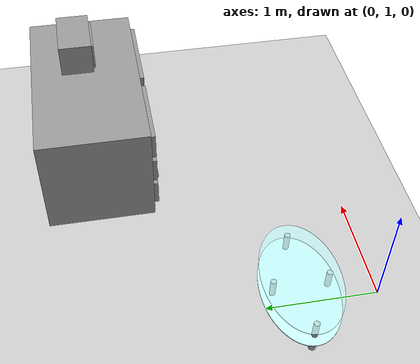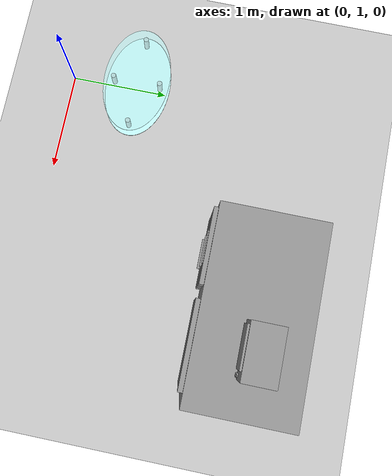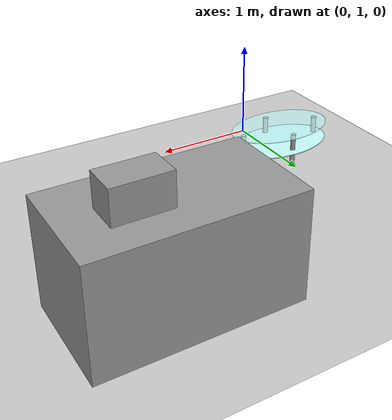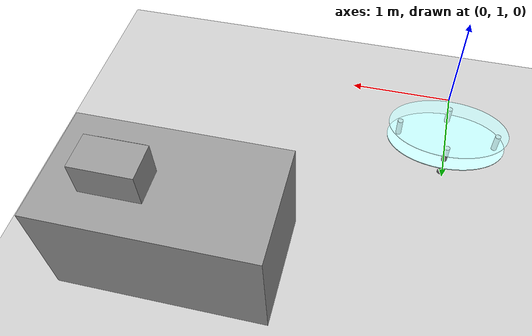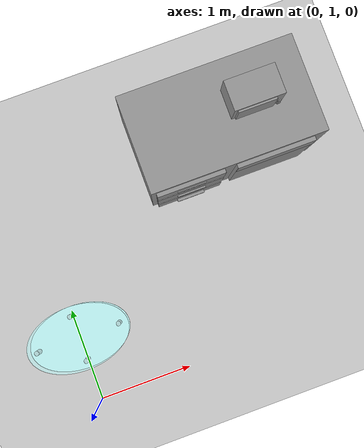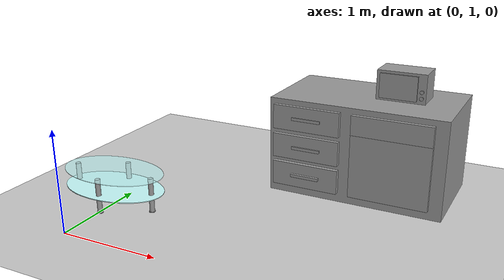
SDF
<sdf version="1.7">
 <world name="default">
  <model name="ground_plane">
   <static>1</static>
   <link name="link">
    <collision name="collision">
     <geometry><plane><normal>0 0 1</normal><size>100 100</size></plane></geometry>
     <surface>
      <contact><collide_bitmask>65535</collide_bitmask></contact>
      <friction><ode><mu>100</mu><mu2>50</mu2></ode></friction>
     </surface>
    </collision>
    <visual name="visual">
     <cast_shadows>0</cast_shadows>
     <geometry><plane><normal>0 0 1</normal><size>100 100</size></plane></geometry>
     <material>
      <script><uri>file://media/materials/scripts/gazebo.material</uri><name>Gazebo/Grey</name></script>
     </material>
    </visual>
   </link>
  </model>
  <model name="my_kitchen">
   <link name="link_clone">
    <inertial>
     <mass>1</mass>
     <inertia>
      <ixx>0.166667</ixx>
      <ixy>0</ixy>
      <ixz>0</ixz>
      <iyy>0.166667</iyy>
      <iyz>0</iyz>
      <izz>0.166667</izz>
     </inertia>
    </inertial>
    <pose>-1.0136 -2.15012 0 0 -0 0</pose>
    <visual name="visual">
     <geometry><box><size>1 1.8 1</size></box></geometry>
     <material>
      <script><name>Gazebo/Grey</name><uri>file://media/materials/scripts/gazebo.material</uri></script>
      <shader type="pixel"><normal_map>__default__</normal_map></shader>
      <ambient>0.8 0.8 0.8 1</ambient>
      <diffuse>0.65 0.65 0.65 1</diffuse>
      <specular>0.01 0.01 0.01 1</specular>
      <emissive>0 0 0 1</emissive>
     </material>
     <pose>0 0 0.5 0 -0 0</pose>
    </visual>
    <collision name="collision">
     <pose>0 0 0.5 0 -0 0</pose>
     <geometry><box><size>1 1.8 1</size></box></geometry>
     <surface>
      <friction>
       <ode><mu>1</mu><mu2>1</mu2><fdir1>0 0 0</fdir1><slip1>0</slip1><slip2>0</slip2></ode>
       <torsional>
        <coefficient>1</coefficient>
        <patch_radius>0</patch_radius>
        <surface_radius>0</surface_radius>
        <use_patch_radius>1</use_patch_radius>
        <ode><slip>0</slip></ode>
       </torsional>
      </friction>
      <bounce><restitution_coefficient>0</restitution_coefficient><threshold>1e+06</threshold></bounce>
      <contact>
       <collide_without_contact>0</collide_without_contact>
       <collide_without_contact_bitmask>1</collide_without_contact_bitmask>
       <collide_bitmask>1</collide_bitmask>
       <ode>
        <soft_cfm>0</soft_cfm>
        <soft_erp>0.2</soft_erp>
        <kp>1e+13</kp>
        <kd>1</kd>
        <max_vel>0.01</max_vel>
        <min_depth>0</min_depth>
       </ode>
       <bullet>
        <split_impulse>1</split_impulse>
        <split_impulse_penetration_threshold>-0.01</split_impulse_penetration_threshold>
        <soft_cfm>0</soft_cfm>
        <soft_erp>0.2</soft_erp>
        <kp>1e+13</kp>
        <kd>1</kd>
       </bullet>
      </contact>
     </surface>
    </collision>
   </link>
   <link name="link_clone_clone_clone_0_clone">
    <inertial>
     <mass>1</mass>
     <inertia>
      <ixx>0.166667</ixx>
      <ixy>0</ixy>
      <ixz>0</ixz>
      <iyy>0.166667</iyy>
      <iyz>0</iyz>
      <izz>0.166667</izz>
     </inertia>
    </inertial>
    <pose>-0.495016 -2.64917 0.017117 0 -0 0</pose>
    <visual name="visual">
     <geometry><box><size>0.05 0.7 0.25</size></box></geometry>
     <material>
      <script><name>Gazebo/Grey</name><uri>file://media/materials/scripts/gazebo.material</uri></script>
      <shader type="pixel"><normal_map>__default__</normal_map></shader>
      <ambient>0.4 0.4 0.4 1</ambient>
      <diffuse>0.4 0.4 0.4 1</diffuse>
      <specular>0.01 0.01 0.01 1</specular>
      <emissive>0 0 0 1</emissive>
     </material>
     <pose>0 0 0.5 0 -0 0</pose>
    </visual>
    <collision name="collision">
     <pose>0 0 0.5 0 -0 0</pose>
     <geometry><box><size>0.05 0.7 0.25</size></box></geometry>
     <surface>
      <friction>
       <ode><mu>1</mu><mu2>1</mu2><fdir1>0 0 0</fdir1><slip1>0</slip1><slip2>0</slip2></ode>
       <torsional>
        <coefficient>1</coefficient>
        <patch_radius>0</patch_radius>
        <surface_radius>0</surface_radius>
        <use_patch_radius>1</use_patch_radius>
        <ode><slip>0</slip></ode>
       </torsional>
      </friction>
      <bounce><restitution_coefficient>0</restitution_coefficient><threshold>1e+06</threshold></bounce>
      <contact>
       <collide_without_contact>0</collide_without_contact>
       <collide_without_contact_bitmask>1</collide_without_contact_bitmask>
       <collide_bitmask>1</collide_bitmask>
       <ode>
        <soft_cfm>0</soft_cfm>
        <soft_erp>0.2</soft_erp>
        <kp>1e+13</kp>
        <kd>1</kd>
        <max_vel>0.01</max_vel>
        <min_depth>0</min_depth>
       </ode>
       <bullet>
        <split_impulse>1</split_impulse>
        <split_impulse_penetration_threshold>-0.01</split_impulse_penetration_threshold>
        <soft_cfm>0</soft_cfm>
        <soft_erp>0.2</soft_erp>
        <kp>1e+13</kp>
        <kd>1</kd>
       </bullet>
      </contact>
     </surface>
    </collision>
   </link>
   <link name="link_clone_clone_clone_0_clone_clone">
    <inertial>
     <mass>1</mass>
     <inertia>
      <ixx>0.166667</ixx>
      <ixy>0</ixy>
      <ixz>0</ixz>
      <iyy>0.166667</iyy>
      <iyz>0</iyz>
      <izz>0.166667</izz>
     </inertia>
    </inertial>
    <pose>-0.496692 -2.64979 0.318441 0 -0 0</pose>
    <visual name="visual">
     <geometry><box><size>0.05 0.7 0.25</size></box></geometry>
     <material>
      <script><name>Gazebo/Grey</name><uri>file://media/materials/scripts/gazebo.material</uri></script>
      <shader type="pixel"><normal_map>__default__</normal_map></shader>
      <ambient>0.4 0.4 0.4 1</ambient>
      <diffuse>0.4 0.4 0.4 1</diffuse>
      <specular>0.01 0.01 0.01 1</specular>
      <emissive>0 0 0 1</emissive>
     </material>
     <pose>0 0 0.5 0 -0 0</pose>
    </visual>
    <collision name="collision">
     <pose>0 0 0.5 0 -0 0</pose>
     <geometry><box><size>0.05 0.7 0.25</size></box></geometry>
     <surface>
      <friction>
       <ode><mu>1</mu><mu2>1</mu2><fdir1>0 0 0</fdir1><slip1>0</slip1><slip2>0</slip2></ode>
       <torsional>
        <coefficient>1</coefficient>
        <patch_radius>0</patch_radius>
        <surface_radius>0</surface_radius>
        <use_patch_radius>1</use_patch_radius>
        <ode><slip>0</slip></ode>
       </torsional>
      </friction>
      <bounce><restitution_coefficient>0</restitution_coefficient><threshold>1e+06</threshold></bounce>
      <contact>
       <collide_without_contact>0</collide_without_contact>
       <collide_without_contact_bitmask>1</collide_without_contact_bitmask>
       <collide_bitmask>1</collide_bitmask>
       <ode>
        <soft_cfm>0</soft_cfm>
        <soft_erp>0.2</soft_erp>
        <kp>1e+13</kp>
        <kd>1</kd>
        <max_vel>0.01</max_vel>
        <min_depth>0</min_depth>
       </ode>
       <bullet>
        <split_impulse>1</split_impulse>
        <split_impulse_penetration_threshold>-0.01</split_impulse_penetration_threshold>
        <soft_cfm>0</soft_cfm>
        <soft_erp>0.2</soft_erp>
        <kp>1e+13</kp>
        <kd>1</kd>
       </bullet>
      </contact>
     </surface>
    </collision>
   </link>
   <link name="link_clone_clone_clone_0_clone_clone_0">
    <inertial>
     <mass>1</mass>
     <inertia>
      <ixx>0.166667</ixx>
      <ixy>0</ixy>
      <ixz>0</ixz>
      <iyy>0.166667</iyy>
      <iyz>0</iyz>
      <izz>0.166667</izz>
     </inertia>
    </inertial>
    <pose>-0.49222 -2.64791 -0.281579 0 -0 0</pose>
    <visual name="visual">
     <geometry><box><size>0.05 0.7 0.25</size></box></geometry>
     <material>
      <script><name>Gazebo/Grey</name><uri>file://media/materials/scripts/gazebo.material</uri></script>
      <shader type="pixel"><normal_map>__default__</normal_map></shader>
      <ambient>0.4 0.4 0.4 1</ambient>
      <diffuse>0.4 0.4 0.4 1</diffuse>
      <specular>0.01 0.01 0.01 1</specular>
      <emissive>0 0 0 1</emissive>
     </material>
     <pose>0 0 0.5 0 -0 0</pose>
    </visual>
    <collision name="collision">
     <pose>0 0 0.5 0 -0 0</pose>
     <geometry><box><size>0.05 0.7 0.25</size></box></geometry>
     <surface>
      <friction>
       <ode><mu>1</mu><mu2>1</mu2><fdir1>0 0 0</fdir1><slip1>0</slip1><slip2>0</slip2></ode>
       <torsional>
        <coefficient>1</coefficient>
        <patch_radius>0</patch_radius>
        <surface_radius>0</surface_radius>
        <use_patch_radius>1</use_patch_radius>
        <ode><slip>0</slip></ode>
       </torsional>
      </friction>
      <bounce><restitution_coefficient>0</restitution_coefficient><threshold>1e+06</threshold></bounce>
      <contact>
       <collide_without_contact>0</collide_without_contact>
       <collide_without_contact_bitmask>1</collide_without_contact_bitmask>
       <collide_bitmask>1</collide_bitmask>
       <ode>
        <soft_cfm>0</soft_cfm>
        <soft_erp>0.2</soft_erp>
        <kp>1e+13</kp>
        <kd>1</kd>
        <max_vel>0.01</max_vel>
        <min_depth>0</min_depth>
       </ode>
       <bullet>
        <split_impulse>1</split_impulse>
        <split_impulse_penetration_threshold>-0.01</split_impulse_penetration_threshold>
        <soft_cfm>0</soft_cfm>
        <soft_erp>0.2</soft_erp>
        <kp>1e+13</kp>
        <kd>1</kd>
       </bullet>
      </contact>
     </surface>
    </collision>
   </link>
   <link name="link_clone_clone_clone_0_clone_clone_clone_0">
    <inertial>
     <mass>1</mass>
     <inertia>
      <ixx>0.166667</ixx>
      <ixy>0</ixy>
      <ixz>0</ixz>
      <iyy>0.166667</iyy>
      <iyz>0</iyz>
      <izz>0.166667</izz>
     </inertia>
    </inertial>
    <pose>-0.499193 -1.7796 0.016041 0 -0 0</pose>
    <gravity>0</gravity>
    <visual name="visual">
     <geometry><box><size>0.05 0.8 0.85</size></box></geometry>
     <material>
      <script><name>Gazebo/Grey</name><uri>file://media/materials/scripts/gazebo.material</uri></script>
      <shader type="pixel"><normal_map>__default__</normal_map></shader>
      <ambient>0.9 0.9 0.9 1</ambient>
      <diffuse>0.9 0.9 0.9 1</diffuse>
      <specular>0.01 0.01 0.01 1</specular>
      <emissive>0 0 0 1</emissive>
     </material>
     <pose>0 0 0.5 0 -0 0</pose>
    </visual>
    <collision name="collision">
     <pose>0 0 0.5 0 -0 0</pose>
     <geometry><box><size>0.05 0.8 0.85</size></box></geometry>
     <surface>
      <friction>
       <ode><mu>1</mu><mu2>1</mu2><fdir1>0 0 0</fdir1><slip1>0</slip1><slip2>0</slip2></ode>
       <torsional>
        <coefficient>1</coefficient>
        <patch_radius>0</patch_radius>
        <surface_radius>0</surface_radius>
        <use_patch_radius>1</use_patch_radius>
        <ode><slip>0</slip></ode>
       </torsional>
      </friction>
      <bounce><restitution_coefficient>0</restitution_coefficient><threshold>1e+06</threshold></bounce>
      <contact>
       <collide_without_contact>0</collide_without_contact>
       <collide_without_contact_bitmask>1</collide_without_contact_bitmask>
       <collide_bitmask>1</collide_bitmask>
       <ode>
        <soft_cfm>0</soft_cfm>
        <soft_erp>0.2</soft_erp>
        <kp>1e+13</kp>
        <kd>1</kd>
        <max_vel>0.01</max_vel>
        <min_depth>0</min_depth>
       </ode>
       <bullet>
        <split_impulse>1</split_impulse>
        <split_impulse_penetration_threshold>-0.01</split_impulse_penetration_threshold>
        <soft_cfm>0</soft_cfm>
        <soft_erp>0.2</soft_erp>
        <kp>1e+13</kp>
        <kd>1</kd>
       </bullet>
      </contact>
     </surface>
    </collision>
   </link>
   <link name="link_clone_clone_clone_0_clone_clone_clone_1">
    <inertial>
     <mass>1</mass>
     <inertia>
      <ixx>0.166667</ixx>
      <ixy>0</ixy>
      <ixz>0</ixz>
      <iyy>0.166667</iyy>
      <iyz>0</iyz>
      <izz>0.166667</izz>
     </inertia>
    </inertial>
    <pose>-0.494653 -1.77941 0.34131 0 -0 0</pose>
    <visual name="visual">
     <geometry><box><size>0.05 0.8 0.2</size></box></geometry>
     <material>
      <script><name>Gazebo/Grey</name><uri>file://media/materials/scripts/gazebo.material</uri></script>
      <shader type="pixel"><normal_map>__default__</normal_map></shader>
      <ambient>0.4 0.4 0.4 1</ambient>
      <diffuse>0.4 0.4 0.4 1</diffuse>
      <specular>0.01 0.01 0.01 1</specular>
      <emissive>0 0 0 1</emissive>
     </material>
     <pose>0 0 0.5 0 -0 0</pose>
    </visual>
    <collision name="collision">
     <pose>0 0 0.5 0 -0 0</pose>
     <geometry><box><size>0.05 0.8 0.2</size></box></geometry>
     <surface>
      <friction>
       <ode><mu>1</mu><mu2>1</mu2><fdir1>0 0 0</fdir1><slip1>0</slip1><slip2>0</slip2></ode>
       <torsional>
        <coefficient>1</coefficient>
        <patch_radius>0</patch_radius>
        <surface_radius>0</surface_radius>
        <use_patch_radius>1</use_patch_radius>
        <ode><slip>0</slip></ode>
       </torsional>
      </friction>
      <bounce><restitution_coefficient>0</restitution_coefficient><threshold>1e+06</threshold></bounce>
      <contact>
       <collide_without_contact>0</collide_without_contact>
       <collide_without_contact_bitmask>1</collide_without_contact_bitmask>
       <collide_bitmask>1</collide_bitmask>
       <ode>
        <soft_cfm>0</soft_cfm>
        <soft_erp>0.2</soft_erp>
        <kp>1e+13</kp>
        <kd>1</kd>
        <max_vel>0.01</max_vel>
        <min_depth>0</min_depth>
       </ode>
       <bullet>
        <split_impulse>1</split_impulse>
        <split_impulse_penetration_threshold>-0.01</split_impulse_penetration_threshold>
        <soft_cfm>0</soft_cfm>
        <soft_erp>0.2</soft_erp>
        <kp>1e+13</kp>
        <kd>1</kd>
       </bullet>
      </contact>
     </surface>
    </collision>
   </link>
   <link name="link_clone_clone_clone_0_clone_clone_clone_clone">
    <inertial>
     <mass>1</mass>
     <inertia>
      <ixx>0.166667</ixx>
      <ixy>0</ixy>
      <ixz>0</ixz>
      <iyy>0.166667</iyy>
      <iyz>0</iyz>
      <izz>0.166667</izz>
     </inertia>
    </inertial>
    <pose>-0.477732 -2.6395 0.015278 0 -0 0</pose>
    <visual name="visual">
     <geometry><box><size>0.05 0.3 0.03</size></box></geometry>
     <material>
      <script><name>Gazebo/Grey</name><uri>file://media/materials/scripts/gazebo.material</uri></script>
      <shader type="pixel"><normal_map>__default__</normal_map></shader>
      <ambient>0.9 0.9 0.9 1</ambient>
      <diffuse>0.8 0.8 0.8 1</diffuse>
      <specular>0.01 0.01 0.01 1</specular>
      <emissive>0 0 0 1</emissive>
     </material>
     <pose>0 0 0.5 0 -0 0</pose>
    </visual>
    <collision name="collision">
     <pose>0 0 0.5 0 -0 0</pose>
     <geometry><box><size>0.05 0.3 0.03</size></box></geometry>
     <surface>
      <friction>
       <ode><mu>1</mu><mu2>1</mu2><fdir1>0 0 0</fdir1><slip1>0</slip1><slip2>0</slip2></ode>
       <torsional>
        <coefficient>1</coefficient>
        <patch_radius>0</patch_radius>
        <surface_radius>0</surface_radius>
        <use_patch_radius>1</use_patch_radius>
        <ode><slip>0</slip></ode>
       </torsional>
      </friction>
      <bounce><restitution_coefficient>0</restitution_coefficient><threshold>1e+06</threshold></bounce>
      <contact>
       <collide_without_contact>0</collide_without_contact>
       <collide_without_contact_bitmask>1</collide_without_contact_bitmask>
       <collide_bitmask>1</collide_bitmask>
       <ode>
        <soft_cfm>0</soft_cfm>
        <soft_erp>0.2</soft_erp>
        <kp>1e+13</kp>
        <kd>1</kd>
        <max_vel>0.01</max_vel>
        <min_depth>0</min_depth>
       </ode>
       <bullet>
        <split_impulse>1</split_impulse>
        <split_impulse_penetration_threshold>-0.01</split_impulse_penetration_threshold>
        <soft_cfm>0</soft_cfm>
        <soft_erp>0.2</soft_erp>
        <kp>1e+13</kp>
        <kd>1</kd>
       </bullet>
      </contact>
     </surface>
    </collision>
   </link>
   <link name="link_clone_clone_clone_0_clone_clone_clone_clone_0">
    <inertial>
     <mass>1</mass>
     <inertia>
      <ixx>0.166667</ixx>
      <ixy>0</ixy>
      <ixz>0</ixz>
      <iyy>0.166667</iyy>
      <iyz>0</iyz>
      <izz>0.166667</izz>
     </inertia>
    </inertial>
    <pose>-0.485904 -2.64716 0.318441 0 -0 0</pose>
    <visual name="visual">
     <geometry><box><size>0.05 0.3 0.03</size></box></geometry>
     <material>
      <script><name>Gazebo/Grey</name><uri>file://media/materials/scripts/gazebo.material</uri></script>
      <shader type="pixel"><normal_map>__default__</normal_map></shader>
      <ambient>0.9 0.9 0.9 1</ambient>
      <diffuse>0.8 0.8 0.8 1</diffuse>
      <specular>0.01 0.01 0.01 1</specular>
      <emissive>0 0 0 1</emissive>
     </material>
     <pose>0 0 0.5 0 -0 0</pose>
    </visual>
    <collision name="collision">
     <pose>0 0 0.5 0 -0 0</pose>
     <geometry><box><size>0.05 0.3 0.03</size></box></geometry>
     <surface>
      <friction>
       <ode><mu>1</mu><mu2>1</mu2><fdir1>0 0 0</fdir1><slip1>0</slip1><slip2>0</slip2></ode>
       <torsional>
        <coefficient>1</coefficient>
        <patch_radius>0</patch_radius>
        <surface_radius>0</surface_radius>
        <use_patch_radius>1</use_patch_radius>
        <ode><slip>0</slip></ode>
       </torsional>
      </friction>
      <bounce><restitution_coefficient>0</restitution_coefficient><threshold>1e+06</threshold></bounce>
      <contact>
       <collide_without_contact>0</collide_without_contact>
       <collide_without_contact_bitmask>1</collide_without_contact_bitmask>
       <collide_bitmask>1</collide_bitmask>
       <ode>
        <soft_cfm>0</soft_cfm>
        <soft_erp>0.2</soft_erp>
        <kp>1e+13</kp>
        <kd>1</kd>
        <max_vel>0.01</max_vel>
        <min_depth>0</min_depth>
       </ode>
       <bullet>
        <split_impulse>1</split_impulse>
        <split_impulse_penetration_threshold>-0.01</split_impulse_penetration_threshold>
        <soft_cfm>0</soft_cfm>
        <soft_erp>0.2</soft_erp>
        <kp>1e+13</kp>
        <kd>1</kd>
       </bullet>
      </contact>
     </surface>
    </collision>
   </link>
   <link name="link_clone_clone_clone_0_clone_clone_clone_clone_clone">
    <inertial>
     <mass>1</mass>
     <inertia>
      <ixx>0.166667</ixx>
      <ixy>0</ixy>
      <ixz>0</ixz>
      <iyy>0.166667</iyy>
      <iyz>0</iyz>
      <izz>0.166667</izz>
     </inertia>
    </inertial>
    <pose>-0.462675 -2.63964 -0.279787 0 -0 0</pose>
    <gravity>0</gravity>
    <visual name="visual">
     <geometry><box><size>0.05 0.3 0.03</size></box></geometry>
     <material>
      <script><name>Gazebo/Grey</name><uri>file://media/materials/scripts/gazebo.material</uri></script>
      <shader type="pixel"><normal_map>__default__</normal_map></shader>
      <ambient>0.9 0.9 0.9 1</ambient>
      <diffuse>0.8 0.8 0.8 1</diffuse>
      <specular>0.01 0.01 0.01 1</specular>
      <emissive>0 0 0 1</emissive>
     </material>
     <pose>0 0 0.5 0 -0 0</pose>
    </visual>
    <collision name="collision">
     <pose>0 0 0.5 0 -0 0</pose>
     <geometry><box><size>0.05 0.3 0.03</size></box></geometry>
     <surface>
      <friction>
       <ode><mu>1</mu><mu2>1</mu2><fdir1>0 0 0</fdir1><slip1>0</slip1><slip2>0</slip2></ode>
       <torsional>
        <coefficient>1</coefficient>
        <patch_radius>0</patch_radius>
        <surface_radius>0</surface_radius>
        <use_patch_radius>1</use_patch_radius>
        <ode><slip>0</slip></ode>
       </torsional>
      </friction>
      <bounce><restitution_coefficient>0</restitution_coefficient><threshold>1e+06</threshold></bounce>
      <contact>
       <collide_without_contact>0</collide_without_contact>
       <collide_without_contact_bitmask>1</collide_without_contact_bitmask>
       <collide_bitmask>1</collide_bitmask>
       <ode>
        <soft_cfm>0</soft_cfm>
        <soft_erp>0.2</soft_erp>
        <kp>1e+13</kp>
        <kd>1</kd>
        <max_vel>0.01</max_vel>
        <min_depth>0</min_depth>
       </ode>
       <bullet>
        <split_impulse>1</split_impulse>
        <split_impulse_penetration_threshold>-0.01</split_impulse_penetration_threshold>
        <soft_cfm>0</soft_cfm>
        <soft_erp>0.2</soft_erp>
        <kp>1e+13</kp>
        <kd>1</kd>
       </bullet>
      </contact>
     </surface>
    </collision>
   </link>
   <static>1</static>
   <pose>4.27978 2.2633 0 0 0 -1.5708</pose>
  </model>
  <model name="my_microwave">
   <link name="link">
    <inertial>
     <mass>1</mass>
     <inertia>
      <ixx>0.166667</ixx>
      <ixy>0</ixy>
      <ixz>0</ixz>
      <iyy>0.166667</iyy>
      <iyz>0</iyz>
      <izz>0.166667</izz>
     </inertia>
    </inertial>
    <visual name="visual">
     <geometry><box><size>0.5 0.3 0.3</size></box></geometry>
     <material>
      <script><name>Gazebo/Grey</name><uri>file://media/materials/scripts/gazebo.material</uri></script>
      <shader type="pixel"><normal_map>__default__</normal_map></shader>
      <ambient>0.9 0.9 0.9 1</ambient>
      <diffuse>0.9 0.9 0.9 1</diffuse>
      <specular>0.01 0.01 0.01 1</specular>
      <emissive>0 0 0 1</emissive>
     </material>
     <pose>0 0 1.15 0 -0 0</pose>
    </visual>
    <collision name="collision">
     <pose>0 0 1.15 0 -0 0</pose>
     <geometry><box><size>0.5 0.3 0.3</size></box></geometry>
     <surface>
      <friction>
       <ode><mu>1</mu><mu2>1</mu2><fdir1>0 0 0</fdir1><slip1>0</slip1><slip2>0</slip2></ode>
       <torsional>
        <coefficient>1</coefficient>
        <patch_radius>0</patch_radius>
        <surface_radius>0</surface_radius>
        <use_patch_radius>1</use_patch_radius>
        <ode><slip>0</slip></ode>
       </torsional>
      </friction>
      <bounce><restitution_coefficient>0</restitution_coefficient><threshold>1e+06</threshold></bounce>
      <contact>
       <collide_without_contact>0</collide_without_contact>
       <collide_without_contact_bitmask>1</collide_without_contact_bitmask>
       <collide_bitmask>1</collide_bitmask>
       <ode>
        <soft_cfm>0</soft_cfm>
        <soft_erp>0.2</soft_erp>
        <kp>1e+13</kp>
        <kd>1</kd>
        <max_vel>0.01</max_vel>
        <min_depth>0</min_depth>
       </ode>
       <bullet>
        <split_impulse>1</split_impulse>
        <split_impulse_penetration_threshold>-0.01</split_impulse_penetration_threshold>
        <soft_cfm>0</soft_cfm>
        <soft_erp>0.2</soft_erp>
        <kp>1e+13</kp>
        <kd>1</kd>
       </bullet>
      </contact>
     </surface>
    </collision>
   </link>
   <link name="link_0">
    <inertial>
     <mass>1</mass>
     <inertia><ixx>0.145833</ixx><ixy>0</ixy><ixz>0</ixz><iyy>0.145833</iyy><iyz>0</iyz><izz>0.125</izz></inertia>
    </inertial>
    <pose>0.208916 -0.163165 -0.025713 0 -0 0</pose>
    <visual name="visual">
     <pose>0 0 1.15 1.5707 -0 0</pose>
     <geometry><cylinder><radius>0.02</radius><length>0.01</length></cylinder></geometry>
     <material>
      <lighting>1</lighting>
      <script><uri>file://media/materials/scripts/gazebo.material</uri><name>Gazebo/Grey</name></script>
      <shader type="pixel"><normal_map>__default__</normal_map></shader>
      <ambient>0.3 0.3 0.3 1</ambient>
      <diffuse>0.7 0.7 0.7 1</diffuse>
      <specular>0.01 0.01 0.01 1</specular>
      <emissive>0 0 0 1</emissive>
     </material>
    </visual>
    <collision name="collision">
     <pose>0 0 1.15 0 -0 0</pose>
     <geometry><cylinder><radius>0.02</radius><length>0.01</length></cylinder></geometry>
     <surface>
      <friction>
       <ode><mu>1</mu><mu2>1</mu2><fdir1>0 0 0</fdir1><slip1>0</slip1><slip2>0</slip2></ode>
       <torsional>
        <coefficient>1</coefficient>
        <patch_radius>0</patch_radius>
        <surface_radius>0</surface_radius>
        <use_patch_radius>1</use_patch_radius>
        <ode><slip>0</slip></ode>
       </torsional>
      </friction>
      <bounce><restitution_coefficient>0</restitution_coefficient><threshold>1e+06</threshold></bounce>
      <contact>
       <collide_without_contact>0</collide_without_contact>
       <collide_without_contact_bitmask>1</collide_without_contact_bitmask>
       <collide_bitmask>1</collide_bitmask>
       <ode>
        <soft_cfm>0</soft_cfm>
        <soft_erp>0.2</soft_erp>
        <kp>1e+13</kp>
        <kd>1</kd>
        <max_vel>0.01</max_vel>
        <min_depth>0</min_depth>
       </ode>
       <bullet>
        <split_impulse>1</split_impulse>
        <split_impulse_penetration_threshold>-0.01</split_impulse_penetration_threshold>
        <soft_cfm>0</soft_cfm>
        <soft_erp>0.2</soft_erp>
        <kp>1e+13</kp>
        <kd>1</kd>
       </bullet>
      </contact>
     </surface>
    </collision>
   </link>
   <link name="link_0_clone">
    <inertial>
     <mass>1</mass>
     <inertia><ixx>0.145833</ixx><ixy>0</ixy><ixz>0</ixz><iyy>0.145833</iyy><iyz>0</iyz><izz>0.125</izz></inertia>
    </inertial>
    <pose>0.209169 -0.165813 -0.087936 0 -0 0</pose>
    <visual name="visual">
     <pose>0 0 1.15 1.5707 -0 0</pose>
     <geometry><cylinder><radius>0.02</radius><length>0.01</length></cylinder></geometry>
     <material>
      <lighting>1</lighting>
      <script><uri>file://media/materials/scripts/gazebo.material</uri><name>Gazebo/Grey</name></script>
      <shader type="pixel"><normal_map>__default__</normal_map></shader>
      <ambient>0.3 0.3 0.3 1</ambient>
      <diffuse>0.7 0.7 0.7 1</diffuse>
      <specular>0.01 0.01 0.01 1</specular>
      <emissive>0 0 0 1</emissive>
     </material>
    </visual>
    <collision name="collision">
     <pose>0 0 1.15 0 -0 0</pose>
     <geometry><cylinder><radius>0.02</radius><length>0.01</length></cylinder></geometry>
     <surface>
      <friction>
       <ode><mu>1</mu><mu2>1</mu2><fdir1>0 0 0</fdir1><slip1>0</slip1><slip2>0</slip2></ode>
       <torsional>
        <coefficient>1</coefficient>
        <patch_radius>0</patch_radius>
        <surface_radius>0</surface_radius>
        <use_patch_radius>1</use_patch_radius>
        <ode><slip>0</slip></ode>
       </torsional>
      </friction>
      <bounce><restitution_coefficient>0</restitution_coefficient><threshold>1e+06</threshold></bounce>
      <contact>
       <collide_without_contact>0</collide_without_contact>
       <collide_without_contact_bitmask>1</collide_without_contact_bitmask>
       <collide_bitmask>1</collide_bitmask>
       <ode>
        <soft_cfm>0</soft_cfm>
        <soft_erp>0.2</soft_erp>
        <kp>1e+13</kp>
        <kd>1</kd>
        <max_vel>0.01</max_vel>
        <min_depth>0</min_depth>
       </ode>
       <bullet>
        <split_impulse>1</split_impulse>
        <split_impulse_penetration_threshold>-0.01</split_impulse_penetration_threshold>
        <soft_cfm>0</soft_cfm>
        <soft_erp>0.2</soft_erp>
        <kp>1e+13</kp>
        <kd>1</kd>
       </bullet>
      </contact>
     </surface>
    </collision>
   </link>
   <link name="link_clone">
    <inertial>
     <mass>1</mass>
     <inertia>
      <ixx>0.166667</ixx>
      <ixy>0</ixy>
      <ixz>0</ixz>
      <iyy>0.166667</iyy>
      <iyz>0</iyz>
      <izz>0.166667</izz>
     </inertia>
    </inertial>
    <pose>-0.026233 -0.15998 0 0 -0 0</pose>
    <visual name="visual">
     <geometry><box><size>0.38 0.02 0.25</size></box></geometry>
     <material>
      <script><name>Gazebo/Grey</name><uri>file://media/materials/scripts/gazebo.material</uri></script>
      <shader type="pixel"><normal_map>__default__</normal_map></shader>
      <ambient>0.2 0.2 0.2 1</ambient>
      <diffuse>0.2 0.2 0.2 1</diffuse>
      <specular>0.01 0.01 0.01 1</specular>
      <emissive>0 0 0 1</emissive>
     </material>
     <pose>0 0 1.15 0 -0 0</pose>
    </visual>
    <collision name="collision">
     <pose>0 0 1.15 0 -0 0</pose>
     <geometry><box><size>0.38 0.02 0.25</size></box></geometry>
     <surface>
      <friction>
       <ode><mu>1</mu><mu2>1</mu2><fdir1>0 0 0</fdir1><slip1>0</slip1><slip2>0</slip2></ode>
       <torsional>
        <coefficient>1</coefficient>
        <patch_radius>0</patch_radius>
        <surface_radius>0</surface_radius>
        <use_patch_radius>1</use_patch_radius>
        <ode><slip>0</slip></ode>
       </torsional>
      </friction>
      <bounce><restitution_coefficient>0</restitution_coefficient><threshold>1e+06</threshold></bounce>
      <contact>
       <collide_without_contact>0</collide_without_contact>
       <collide_without_contact_bitmask>1</collide_without_contact_bitmask>
       <collide_bitmask>1</collide_bitmask>
       <ode>
        <soft_cfm>0</soft_cfm>
        <soft_erp>0.2</soft_erp>
        <kp>1e+13</kp>
        <kd>1</kd>
        <max_vel>0.01</max_vel>
        <min_depth>0</min_depth>
       </ode>
       <bullet>
        <split_impulse>1</split_impulse>
        <split_impulse_penetration_threshold>-0.01</split_impulse_penetration_threshold>
        <soft_cfm>0</soft_cfm>
        <soft_erp>0.2</soft_erp>
        <kp>1e+13</kp>
        <kd>1</kd>
       </bullet>
      </contact>
     </surface>
    </collision>
   </link>
   <static>1</static>
   <pose>2.44306 3.33953 0 0 -0 0</pose>
  </model>
  <model name="my_coffee_table">
   <link name="link_0">
    <inertial>
     <mass>1</mass>
     <inertia>
      <ixx>0.166667</ixx>
      <ixy>0</ixy>
      <ixz>0</ixz>
      <iyy>0.166667</iyy>
      <iyz>0</iyz>
      <izz>0.166667</izz>
     </inertia>
    </inertial>
    <pose>0 0 0.015663 0 -0 0</pose>
    <visual name="visual">
     <pose>0 0 0.35 0 -0 0</pose>
     <geometry>
      <mesh>
       <uri>/home/massari/workspace/catkin_ws/src/my_robot/models/my_coffee_table/../../meshes/my_coffee_table.dae</uri>
       <scale>0.6 0.6 0.15</scale>
      </mesh>
     </geometry>
     <material>
      <lighting>1</lighting>
      <script><uri>file://media/materials/scripts/gazebo.material</uri><name>Gazebo/Grey</name></script>
      <shader type="pixel"><normal_map>__default__</normal_map></shader>
      <ambient>0.79 1 1 0.4</ambient>
      <diffuse>0.79 1 1 1</diffuse>
      <specular>0.01 0.01 0.01 1</specular>
      <emissive>0 0 0 1</emissive>
     </material>
     <transparency>0.3</transparency>
    </visual>
    <collision name="collision">
     <pose>0 0 0.35 0 -0 0</pose>
     <geometry>
      <mesh>
       <uri>/home/massari/workspace/catkin_ws/src/my_robot/models/my_coffee_table/../../meshes/my_coffee_table.dae</uri>
       <scale>0.6 0.6 0.15</scale>
      </mesh>
     </geometry>
     <surface>
      <friction>
       <ode><mu>1</mu><mu2>1</mu2><fdir1>0 0 0</fdir1><slip1>0</slip1><slip2>0</slip2></ode>
       <torsional>
        <coefficient>1</coefficient>
        <patch_radius>0</patch_radius>
        <surface_radius>0</surface_radius>
        <use_patch_radius>1</use_patch_radius>
        <ode><slip>0</slip></ode>
       </torsional>
      </friction>
      <bounce><restitution_coefficient>0</restitution_coefficient><threshold>1e+06</threshold></bounce>
      <contact>
       <collide_without_contact>0</collide_without_contact>
       <collide_without_contact_bitmask>1</collide_without_contact_bitmask>
       <collide_bitmask>1</collide_bitmask>
       <ode>
        <soft_cfm>0</soft_cfm>
        <soft_erp>0.2</soft_erp>
        <kp>1e+13</kp>
        <kd>1</kd>
        <max_vel>0.01</max_vel>
        <min_depth>0</min_depth>
       </ode>
       <bullet>
        <split_impulse>1</split_impulse>
        <split_impulse_penetration_threshold>-0.01</split_impulse_penetration_threshold>
        <soft_cfm>0</soft_cfm>
        <soft_erp>0.2</soft_erp>
        <kp>1e+13</kp>
        <kd>1</kd>
       </bullet>
      </contact>
     </surface>
    </collision>
   </link>
   <link name="link_0_clone">
    <inertial>
     <mass>1</mass>
     <inertia>
      <ixx>0.166667</ixx>
      <ixy>0</ixy>
      <ixz>0</ixz>
      <iyy>0.166667</iyy>
      <iyz>0</iyz>
      <izz>0.166667</izz>
     </inertia>
    </inertial>
    <pose>0 0 -0.15873 0 -0 0</pose>
    <visual name="visual">
     <pose>0 0 0.35 0 -0 0</pose>
     <geometry>
      <mesh>
       <uri>/home/massari/workspace/catkin_ws/src/my_robot/models/my_coffee_table/../../meshes/my_coffee_table.dae</uri>
       <scale>0.6 0.6 0.15</scale>
      </mesh>
     </geometry>
     <material>
      <lighting>1</lighting>
      <script><uri>file://media/materials/scripts/gazebo.material</uri><name>Gazebo/Grey</name></script>
      <shader type="pixel"><normal_map>__default__</normal_map></shader>
      <ambient>0.79 1 1 0.4</ambient>
      <diffuse>0.79 1 1 1</diffuse>
      <specular>0.01 0.01 0.01 1</specular>
      <emissive>0 0 0 1</emissive>
     </material>
     <transparency>0.02</transparency>
    </visual>
    <collision name="collision">
     <pose>0 0 0.35 0 -0 0</pose>
     <geometry>
      <mesh>
       <uri>/home/massari/workspace/catkin_ws/src/my_robot/models/my_coffee_table/../../meshes/my_coffee_table.dae</uri>
       <scale>0.6 0.6 0.15</scale>
      </mesh>
     </geometry>
     <surface>
      <friction>
       <ode><mu>1</mu><mu2>1</mu2><fdir1>0 0 0</fdir1><slip1>0</slip1><slip2>0</slip2></ode>
       <torsional>
        <coefficient>1</coefficient>
        <patch_radius>0</patch_radius>
        <surface_radius>0</surface_radius>
        <use_patch_radius>1</use_patch_radius>
        <ode><slip>0</slip></ode>
       </torsional>
      </friction>
      <bounce><restitution_coefficient>0</restitution_coefficient><threshold>1e+06</threshold></bounce>
      <contact>
       <collide_without_contact>0</collide_without_contact>
       <collide_without_contact_bitmask>1</collide_without_contact_bitmask>
       <collide_bitmask>1</collide_bitmask>
       <ode>
        <soft_cfm>0</soft_cfm>
        <soft_erp>0.2</soft_erp>
        <kp>1e+13</kp>
        <kd>1</kd>
        <max_vel>0.01</max_vel>
        <min_depth>0</min_depth>
       </ode>
       <bullet>
        <split_impulse>1</split_impulse>
        <split_impulse_penetration_threshold>-0.01</split_impulse_penetration_threshold>
        <soft_cfm>0</soft_cfm>
        <soft_erp>0.2</soft_erp>
        <kp>1e+13</kp>
        <kd>1</kd>
       </bullet>
      </contact>
     </surface>
    </collision>
   </link>
   <link name="link_1">
    <inertial>
     <mass>1</mass>
     <inertia><ixx>0.145833</ixx><ixy>0</ixy><ixz>0</ixz><iyy>0.145833</iyy><iyz>0</iyz><izz>0.125</izz></inertia>
    </inertial>
    <pose>-0.007961 0.235246 0.19 0 -0 0</pose>
    <visual name="visual">
     <geometry><cylinder><radius>0.025</radius><length>0.35</length></cylinder></geometry>
     <material>
      <lighting>1</lighting>
      <script><uri>file://media/materials/scripts/gazebo.material</uri><name>Gazebo/Grey</name></script>
      <shader type="pixel"><normal_map>__default__</normal_map></shader>
      <ambient>0.753 0.753 0.753 1</ambient>
      <diffuse>0.753 0.753 0.753 1</diffuse>
      <specular>0.01 0.01 0.01 1</specular>
      <emissive>0 0 0 1</emissive>
     </material>
    </visual>
    <collision name="collision">
     <geometry><cylinder><radius>0.025</radius><length>0.35</length></cylinder></geometry>
     <surface>
      <friction>
       <ode><mu>1</mu><mu2>1</mu2><fdir1>0 0 0</fdir1><slip1>0</slip1><slip2>0</slip2></ode>
       <torsional>
        <coefficient>1</coefficient>
        <patch_radius>0</patch_radius>
        <surface_radius>0</surface_radius>
        <use_patch_radius>1</use_patch_radius>
        <ode><slip>0</slip></ode>
       </torsional>
      </friction>
      <bounce><restitution_coefficient>0</restitution_coefficient><threshold>1e+06</threshold></bounce>
      <contact>
       <collide_without_contact>0</collide_without_contact>
       <collide_without_contact_bitmask>1</collide_without_contact_bitmask>
       <collide_bitmask>1</collide_bitmask>
       <ode>
        <soft_cfm>0</soft_cfm>
        <soft_erp>0.2</soft_erp>
        <kp>1e+13</kp>
        <kd>1</kd>
        <max_vel>0.01</max_vel>
        <min_depth>0</min_depth>
       </ode>
       <bullet>
        <split_impulse>1</split_impulse>
        <split_impulse_penetration_threshold>-0.01</split_impulse_penetration_threshold>
        <soft_cfm>0</soft_cfm>
        <soft_erp>0.2</soft_erp>
        <kp>1e+13</kp>
        <kd>1</kd>
       </bullet>
      </contact>
     </surface>
    </collision>
   </link>
   <link name="link_1_clone">
    <inertial>
     <mass>1</mass>
     <inertia><ixx>0.145833</ixx><ixy>0</ixy><ixz>0</ixz><iyy>0.145833</iyy><iyz>0</iyz><izz>0.125</izz></inertia>
    </inertial>
    <pose>0.441227 -0.001248 0.19 0 -0 0</pose>
    <visual name="visual">
     <geometry><cylinder><radius>0.025</radius><length>0.35</length></cylinder></geometry>
     <material>
      <lighting>1</lighting>
      <script><uri>file://media/materials/scripts/gazebo.material</uri><name>Gazebo/Grey</name></script>
      <shader type="pixel"><normal_map>__default__</normal_map></shader>
      <ambient>0.753 0.753 0.753 1</ambient>
      <diffuse>0.753 0.753 0.753 1</diffuse>
      <specular>0.01 0.01 0.01 1</specular>
      <emissive>0 0 0 1</emissive>
     </material>
    </visual>
    <collision name="collision">
     <geometry><cylinder><radius>0.025</radius><length>0.35</length></cylinder></geometry>
     <surface>
      <friction>
       <ode><mu>1</mu><mu2>1</mu2><fdir1>0 0 0</fdir1><slip1>0</slip1><slip2>0</slip2></ode>
       <torsional>
        <coefficient>1</coefficient>
        <patch_radius>0</patch_radius>
        <surface_radius>0</surface_radius>
        <use_patch_radius>1</use_patch_radius>
        <ode><slip>0</slip></ode>
       </torsional>
      </friction>
      <bounce><restitution_coefficient>0</restitution_coefficient><threshold>1e+06</threshold></bounce>
      <contact>
       <collide_without_contact>0</collide_without_contact>
       <collide_without_contact_bitmask>1</collide_without_contact_bitmask>
       <collide_bitmask>1</collide_bitmask>
       <ode>
        <soft_cfm>0</soft_cfm>
        <soft_erp>0.2</soft_erp>
        <kp>1e+13</kp>
        <kd>1</kd>
        <max_vel>0.01</max_vel>
        <min_depth>0</min_depth>
       </ode>
       <bullet>
        <split_impulse>1</split_impulse>
        <split_impulse_penetration_threshold>-0.01</split_impulse_penetration_threshold>
        <soft_cfm>0</soft_cfm>
        <soft_erp>0.2</soft_erp>
        <kp>1e+13</kp>
        <kd>1</kd>
       </bullet>
      </contact>
     </surface>
    </collision>
   </link>
   <link name="link_1_clone_clone">
    <inertial>
     <mass>1</mass>
     <inertia><ixx>0.145833</ixx><ixy>0</ixy><ixz>0</ixz><iyy>0.145833</iyy><iyz>0</iyz><izz>0.125</izz></inertia>
    </inertial>
    <pose>0.001265 -0.246836 0.19 0 -0 0</pose>
    <visual name="visual">
     <geometry><cylinder><radius>0.025</radius><length>0.35</length></cylinder></geometry>
     <material>
      <lighting>1</lighting>
      <script><uri>file://media/materials/scripts/gazebo.material</uri><name>Gazebo/Grey</name></script>
      <shader type="pixel"><normal_map>__default__</normal_map></shader>
      <ambient>0.753 0.753 0.753 1</ambient>
      <diffuse>0.753 0.753 0.753 1</diffuse>
      <specular>0.01 0.01 0.01 1</specular>
      <emissive>0 0 0 1</emissive>
     </material>
    </visual>
    <collision name="collision">
     <geometry><cylinder><radius>0.025</radius><length>0.35</length></cylinder></geometry>
     <surface>
      <friction>
       <ode><mu>1</mu><mu2>1</mu2><fdir1>0 0 0</fdir1><slip1>0</slip1><slip2>0</slip2></ode>
       <torsional>
        <coefficient>1</coefficient>
        <patch_radius>0</patch_radius>
        <surface_radius>0</surface_radius>
        <use_patch_radius>1</use_patch_radius>
        <ode><slip>0</slip></ode>
       </torsional>
      </friction>
      <bounce><restitution_coefficient>0</restitution_coefficient><threshold>1e+06</threshold></bounce>
      <contact>
       <collide_without_contact>0</collide_without_contact>
       <collide_without_contact_bitmask>1</collide_without_contact_bitmask>
       <collide_bitmask>1</collide_bitmask>
       <ode>
        <soft_cfm>0</soft_cfm>
        <soft_erp>0.2</soft_erp>
        <kp>1e+13</kp>
        <kd>1</kd>
        <max_vel>0.01</max_vel>
        <min_depth>0</min_depth>
       </ode>
       <bullet>
        <split_impulse>1</split_impulse>
        <split_impulse_penetration_threshold>-0.01</split_impulse_penetration_threshold>
        <soft_cfm>0</soft_cfm>
        <soft_erp>0.2</soft_erp>
        <kp>1e+13</kp>
        <kd>1</kd>
       </bullet>
      </contact>
     </surface>
    </collision>
   </link>
   <link name="link_1_clone_clone_0">
    <inertial>
     <mass>1</mass>
     <inertia><ixx>0.145833</ixx><ixy>0</ixy><ixz>0</ixz><iyy>0.145833</iyy><iyz>0</iyz><izz>0.125</izz></inertia>
    </inertial>
    <pose>-0.451203 0 0.19 0 -0 0</pose>
    <visual name="visual">
     <geometry><cylinder><radius>0.025</radius><length>0.35</length></cylinder></geometry>
     <material>
      <lighting>1</lighting>
      <script><uri>file://media/materials/scripts/gazebo.material</uri><name>Gazebo/Grey</name></script>
      <shader type="pixel"><normal_map>__default__</normal_map></shader>
      <ambient>0.753 0.753 0.753 1</ambient>
      <diffuse>0.753 0.753 0.753 1</diffuse>
      <specular>0.01 0.01 0.01 1</specular>
      <emissive>0 0 0 1</emissive>
     </material>
    </visual>
    <collision name="collision">
     <geometry><cylinder><radius>0.025</radius><length>0.35</length></cylinder></geometry>
     <surface>
      <friction>
       <ode><mu>1</mu><mu2>1</mu2><fdir1>0 0 0</fdir1><slip1>0</slip1><slip2>0</slip2></ode>
       <torsional>
        <coefficient>1</coefficient>
        <patch_radius>0</patch_radius>
        <surface_radius>0</surface_radius>
        <use_patch_radius>1</use_patch_radius>
        <ode><slip>0</slip></ode>
       </torsional>
      </friction>
      <bounce><restitution_coefficient>0</restitution_coefficient><threshold>1e+06</threshold></bounce>
      <contact>
       <collide_without_contact>0</collide_without_contact>
       <collide_without_contact_bitmask>1</collide_without_contact_bitmask>
       <collide_bitmask>1</collide_bitmask>
       <ode>
        <soft_cfm>0</soft_cfm>
        <soft_erp>0.2</soft_erp>
        <kp>1e+13</kp>
        <kd>1</kd>
        <max_vel>0.01</max_vel>
        <min_depth>0</min_depth>
       </ode>
       <bullet>
        <split_impulse>1</split_impulse>
        <split_impulse_penetration_threshold>-0.01</split_impulse_penetration_threshold>
        <soft_cfm>0</soft_cfm>
        <soft_erp>0.2</soft_erp>
        <kp>1e+13</kp>
        <kd>1</kd>
       </bullet>
      </contact>
     </surface>
    </collision>
   </link>
   <link name="link_1_clone_clone_clone">
    <inertial>
     <mass>1</mass>
     <inertia><ixx>0.145833</ixx><ixy>0</ixy><ixz>0</ixz><iyy>0.145833</iyy><iyz>0</iyz><izz>0.125</izz></inertia>
    </inertial>
    <pose>-0.451679 -0.00025 0.0175 0 -0 0</pose>
    <visual name="visual">
     <geometry><cylinder><radius>0.033</radius><length>0.005</length></cylinder></geometry>
     <material>
      <lighting>1</lighting>
      <script><uri>file://media/materials/scripts/gazebo.material</uri><name>Gazebo/Grey</name></script>
      <shader type="pixel"><normal_map>__default__</normal_map></shader>
      <ambient>0.753 0.753 0.753 1</ambient>
      <diffuse>0.753 0.753 0.753 1</diffuse>
      <specular>0.01 0.01 0.01 1</specular>
      <emissive>0 0 0 1</emissive>
     </material>
    </visual>
    <collision name="collision">
     <geometry><cylinder><radius>0.033</radius><length>0.005</length></cylinder></geometry>
     <surface>
      <friction>
       <ode><mu>1</mu><mu2>1</mu2><fdir1>0 0 0</fdir1><slip1>0</slip1><slip2>0</slip2></ode>
       <torsional>
        <coefficient>1</coefficient>
        <patch_radius>0</patch_radius>
        <surface_radius>0</surface_radius>
        <use_patch_radius>1</use_patch_radius>
        <ode><slip>0</slip></ode>
       </torsional>
      </friction>
      <bounce><restitution_coefficient>0</restitution_coefficient><threshold>1e+06</threshold></bounce>
      <contact>
       <collide_without_contact>0</collide_without_contact>
       <collide_without_contact_bitmask>1</collide_without_contact_bitmask>
       <collide_bitmask>1</collide_bitmask>
       <ode>
        <soft_cfm>0</soft_cfm>
        <soft_erp>0.2</soft_erp>
        <kp>1e+13</kp>
        <kd>1</kd>
        <max_vel>0.01</max_vel>
        <min_depth>0</min_depth>
       </ode>
       <bullet>
        <split_impulse>1</split_impulse>
        <split_impulse_penetration_threshold>-0.01</split_impulse_penetration_threshold>
        <soft_cfm>0</soft_cfm>
        <soft_erp>0.2</soft_erp>
        <kp>1e+13</kp>
        <kd>1</kd>
       </bullet>
      </contact>
     </surface>
    </collision>
   </link>
   <link name="link_1_clone_clone_clone_clone">
    <inertial>
     <mass>1</mass>
     <inertia><ixx>0.145833</ixx><ixy>0</ixy><ixz>0</ixz><iyy>0.145833</iyy><iyz>0</iyz><izz>0.125</izz></inertia>
    </inertial>
    <pose>0.000264 -0.246964 0.0175 0 -0 0</pose>
    <visual name="visual">
     <geometry><cylinder><radius>0.033</radius><length>0.005</length></cylinder></geometry>
     <material>
      <lighting>1</lighting>
      <script><uri>file://media/materials/scripts/gazebo.material</uri><name>Gazebo/Grey</name></script>
      <shader type="pixel"><normal_map>__default__</normal_map></shader>
      <ambient>0.753 0.753 0.753 1</ambient>
      <diffuse>0.753 0.753 0.753 1</diffuse>
      <specular>0.01 0.01 0.01 1</specular>
      <emissive>0 0 0 1</emissive>
     </material>
    </visual>
    <collision name="collision">
     <geometry><cylinder><radius>0.033</radius><length>0.005</length></cylinder></geometry>
     <surface>
      <friction>
       <ode><mu>1</mu><mu2>1</mu2><fdir1>0 0 0</fdir1><slip1>0</slip1><slip2>0</slip2></ode>
       <torsional>
        <coefficient>1</coefficient>
        <patch_radius>0</patch_radius>
        <surface_radius>0</surface_radius>
        <use_patch_radius>1</use_patch_radius>
        <ode><slip>0</slip></ode>
       </torsional>
      </friction>
      <bounce><restitution_coefficient>0</restitution_coefficient><threshold>1e+06</threshold></bounce>
      <contact>
       <collide_without_contact>0</collide_without_contact>
       <collide_without_contact_bitmask>1</collide_without_contact_bitmask>
       <collide_bitmask>1</collide_bitmask>
       <ode>
        <soft_cfm>0</soft_cfm>
        <soft_erp>0.2</soft_erp>
        <kp>1e+13</kp>
        <kd>1</kd>
        <max_vel>0.01</max_vel>
        <min_depth>0</min_depth>
       </ode>
       <bullet>
        <split_impulse>1</split_impulse>
        <split_impulse_penetration_threshold>-0.01</split_impulse_penetration_threshold>
        <soft_cfm>0</soft_cfm>
        <soft_erp>0.2</soft_erp>
        <kp>1e+13</kp>
        <kd>1</kd>
       </bullet>
      </contact>
     </surface>
    </collision>
   </link>
   <link name="link_1_clone_clone_clone_clone_0">
    <inertial>
     <mass>1</mass>
     <inertia><ixx>0.145833</ixx><ixy>0</ixy><ixz>0</ixz><iyy>0.145833</iyy><iyz>0</iyz><izz>0.125</izz></inertia>
    </inertial>
    <pose>-0.008253 0.235671 0.0175 0 -0 0</pose>
    <visual name="visual">
     <geometry><cylinder><radius>0.033</radius><length>0.005</length></cylinder></geometry>
     <material>
      <lighting>1</lighting>
      <script><uri>file://media/materials/scripts/gazebo.material</uri><name>Gazebo/Grey</name></script>
      <shader type="pixel"><normal_map>__default__</normal_map></shader>
      <ambient>0.753 0.753 0.753 1</ambient>
      <diffuse>0.753 0.753 0.753 1</diffuse>
      <specular>0.01 0.01 0.01 1</specular>
      <emissive>0 0 0 1</emissive>
     </material>
    </visual>
    <collision name="collision">
     <geometry><cylinder><radius>0.033</radius><length>0.005</length></cylinder></geometry>
     <surface>
      <friction>
       <ode><mu>1</mu><mu2>1</mu2><fdir1>0 0 0</fdir1><slip1>0</slip1><slip2>0</slip2></ode>
       <torsional>
        <coefficient>1</coefficient>
        <patch_radius>0</patch_radius>
        <surface_radius>0</surface_radius>
        <use_patch_radius>1</use_patch_radius>
        <ode><slip>0</slip></ode>
       </torsional>
      </friction>
      <bounce><restitution_coefficient>0</restitution_coefficient><threshold>1e+06</threshold></bounce>
      <contact>
       <collide_without_contact>0</collide_without_contact>
       <collide_without_contact_bitmask>1</collide_without_contact_bitmask>
       <collide_bitmask>1</collide_bitmask>
       <ode>
        <soft_cfm>0</soft_cfm>
        <soft_erp>0.2</soft_erp>
        <kp>1e+13</kp>
        <kd>1</kd>
        <max_vel>0.01</max_vel>
        <min_depth>0</min_depth>
       </ode>
       <bullet>
        <split_impulse>1</split_impulse>
        <split_impulse_penetration_threshold>-0.01</split_impulse_penetration_threshold>
        <soft_cfm>0</soft_cfm>
        <soft_erp>0.2</soft_erp>
        <kp>1e+13</kp>
        <kd>1</kd>
       </bullet>
      </contact>
     </surface>
    </collision>
   </link>
   <link name="link_1_clone_clone_clone_clone_1">
    <inertial>
     <mass>1</mass>
     <inertia><ixx>0.145833</ixx><ixy>0</ixy><ixz>0</ixz><iyy>0.145833</iyy><iyz>0</iyz><izz>0.125</izz></inertia>
    </inertial>
    <pose>0.441049 -0.001441 0.0175 0 -0 0</pose>
    <visual name="visual">
     <geometry><cylinder><radius>0.033</radius><length>0.005</length></cylinder></geometry>
     <material>
      <lighting>1</lighting>
      <script><uri>file://media/materials/scripts/gazebo.material</uri><name>Gazebo/Grey</name></script>
      <shader type="pixel"><normal_map>__default__</normal_map></shader>
      <ambient>0.753 0.753 0.753 1</ambient>
      <diffuse>0.753 0.753 0.753 1</diffuse>
      <specular>0.01 0.01 0.01 1</specular>
      <emissive>0 0 0 1</emissive>
     </material>
    </visual>
    <collision name="collision">
     <geometry><cylinder><radius>0.033</radius><length>0.005</length></cylinder></geometry>
     <surface>
      <friction>
       <ode><mu>1</mu><mu2>1</mu2><fdir1>0 0 0</fdir1><slip1>0</slip1><slip2>0</slip2></ode>
       <torsional>
        <coefficient>1</coefficient>
        <patch_radius>0</patch_radius>
        <surface_radius>0</surface_radius>
        <use_patch_radius>1</use_patch_radius>
        <ode><slip>0</slip></ode>
       </torsional>
      </friction>
      <bounce><restitution_coefficient>0</restitution_coefficient><threshold>1e+06</threshold></bounce>
      <contact>
       <collide_without_contact>0</collide_without_contact>
       <collide_without_contact_bitmask>1</collide_without_contact_bitmask>
       <collide_bitmask>1</collide_bitmask>
       <ode>
        <soft_cfm>0</soft_cfm>
        <soft_erp>0.2</soft_erp>
        <kp>1e+13</kp>
        <kd>1</kd>
        <max_vel>0.01</max_vel>
        <min_depth>0</min_depth>
       </ode>
       <bullet>
        <split_impulse>1</split_impulse>
        <split_impulse_penetration_threshold>-0.01</split_impulse_penetration_threshold>
        <soft_cfm>0</soft_cfm>
        <soft_erp>0.2</soft_erp>
        <kp>1e+13</kp>
        <kd>1</kd>
       </bullet>
      </contact>
     </surface>
    </collision>
   </link>
   <joint name="link_0_JOINT_0" type="fixed">
    <parent>link_0</parent>
    <child>link_1</child>
    <physics>
     <ode><limit><cfm>0</cfm><erp>0.2</erp></limit><suspension><cfm>0</cfm><erp>0.2</erp></suspension></ode>
    </physics>
   </joint>
   <joint name="link_0_JOINT_1" type="fixed">
    <parent>link_0</parent>
    <child>link_1_clone</child>
    <physics>
     <ode><limit><cfm>0</cfm><erp>0.2</erp></limit><suspension><cfm>0</cfm><erp>0.2</erp></suspension></ode>
    </physics>
   </joint>
   <joint name="link_0_JOINT_2" type="fixed">
    <parent>link_0</parent>
    <child>link_1_clone_clone</child>
    <physics>
     <ode><limit><cfm>0</cfm><erp>0.2</erp></limit><suspension><cfm>0</cfm><erp>0.2</erp></suspension></ode>
    </physics>
   </joint>
   <joint name="link_0_JOINT_3" type="fixed">
    <parent>link_0</parent>
    <child>link_1_clone_clone_0</child>
    <physics>
     <ode><limit><cfm>0</cfm><erp>0.2</erp></limit><suspension><cfm>0</cfm><erp>0.2</erp></suspension></ode>
    </physics>
   </joint>
   <joint name="link_0_clone_JOINT_9" type="fixed">
    <parent>link_0_clone</parent>
    <child>link_0</child>
    <physics>
     <ode><limit><cfm>0</cfm><erp>0.2</erp></limit><suspension><cfm>0</cfm><erp>0.2</erp></suspension></ode>
    </physics>
   </joint>
   <static>1</static>
   <pose>0.027064 1.71886 0 0 -0 0</pose>
  </model>
 </world>
</sdf>
